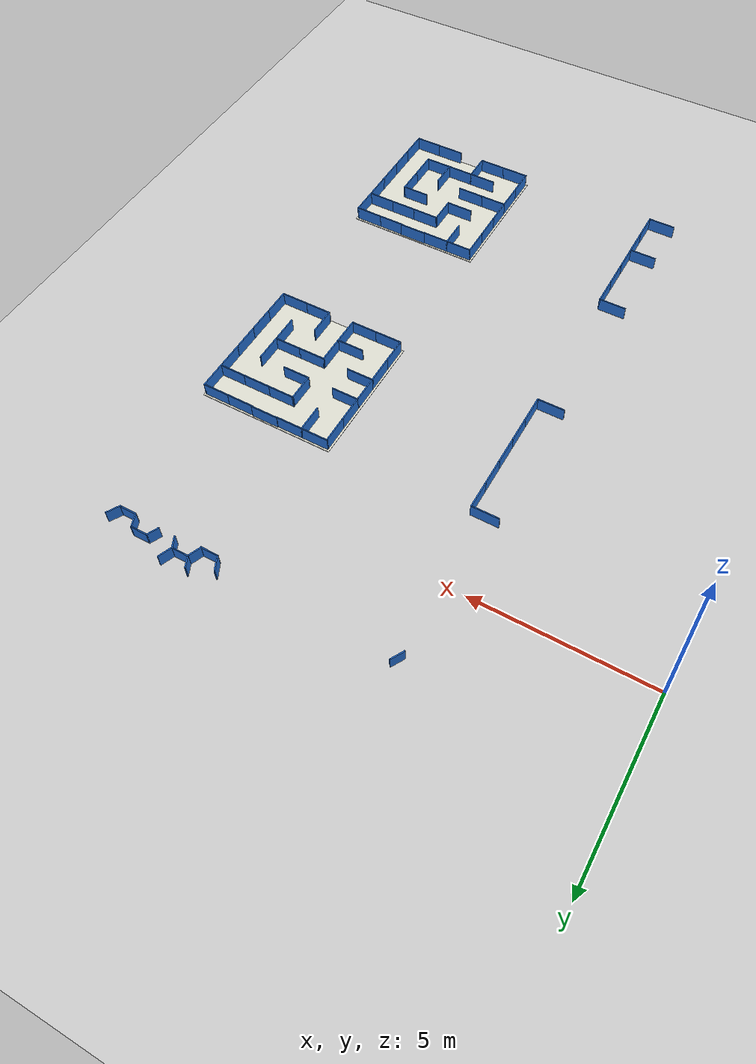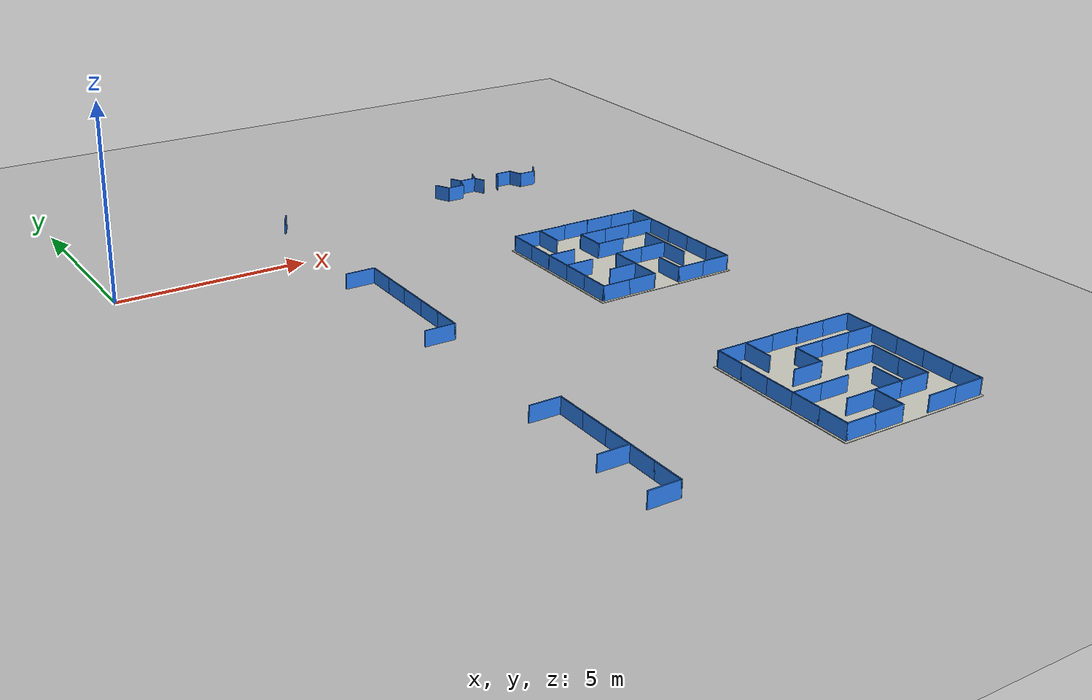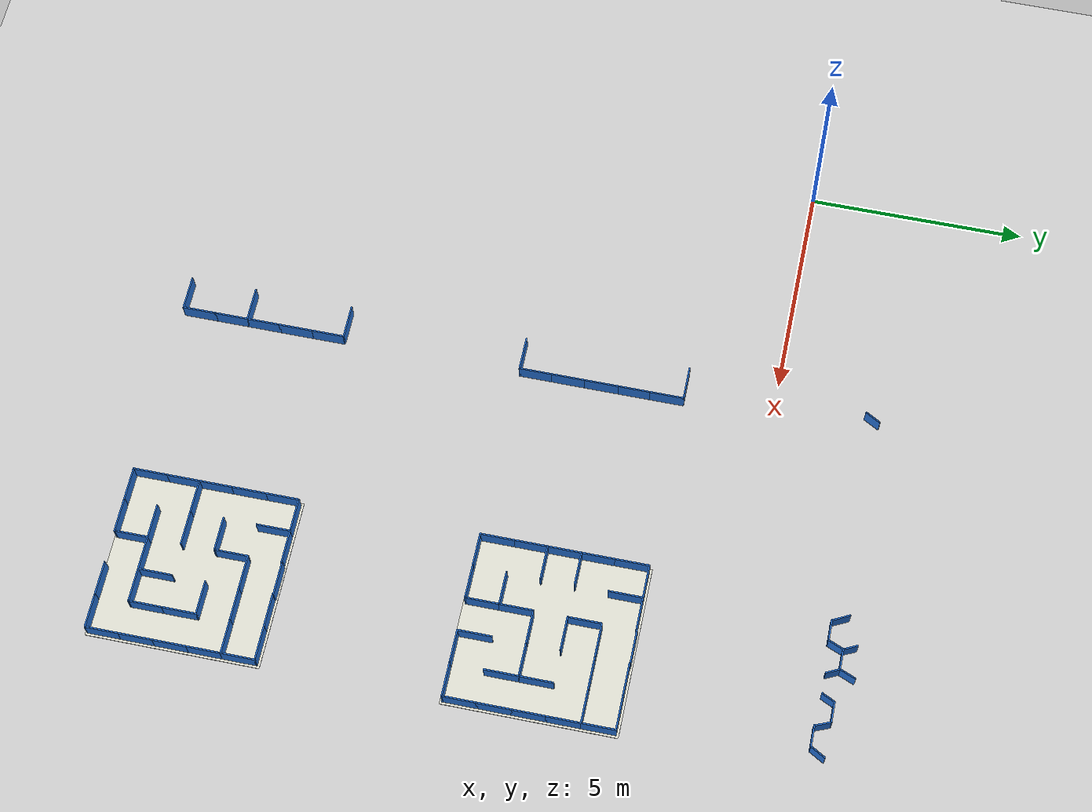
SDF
<sdf version="1.10">
 <world name="nhom8_maze_multi">
  <model name="ground_plane">
   <static>true</static>
   <link name="link">
    <collision name="collision">
     <geometry><plane><normal>0 0 1</normal><size>80.0 80.0</size></plane></geometry>
     <surface><friction><ode><mu>40</mu></ode></friction></surface>
    </collision>
    <visual name="visual">
     <geometry><plane><normal>0 0 1</normal><size>80.0 80.0</size></plane></geometry>
     <material>
      <ambient>0.8 0.8 0.8 1</ambient>
      <diffuse>0.8 0.8 0.8 1</diffuse>
      <specular>0.8 0.8 0.8 1</specular>
     </material>
    </visual>
   </link>
  </model>
  <model name="ortho_1_wall_014">
   <static>true</static>
   <pose>5.917600 -10.465950 0.2000 0 0 1.570796</pose>
   <link name="link">
    <collision name="col"><geometry><box><size>0.7971 0.0300 0.4000</size></box></geometry></collision>
    <visual name="vis">
     <geometry><box><size>0.7971 0.0300 0.4000</size></box></geometry>
     <material><ambient>0.15 0.45 0.85 1</ambient><diffuse>0.15 0.45 0.85 1</diffuse></material>
    </visual>
   </link>
  </model>
  <model name="ortho_1_wall_015">
   <static>true</static>
   <pose>5.917600 -11.233000 0.2000 0 0 1.570796</pose>
   <link name="link">
    <collision name="col"><geometry><box><size>0.7970 0.0300 0.4000</size></box></geometry></collision>
    <visual name="vis">
     <geometry><box><size>0.7970 0.0300 0.4000</size></box></geometry>
     <material><ambient>0.15 0.45 0.85 1</ambient><diffuse>0.15 0.45 0.85 1</diffuse></material>
    </visual>
   </link>
  </model>
  <model name="ortho_1_wall_016">
   <static>true</static>
   <pose>5.917600 -12.000000 0.2000 0 0 1.570796</pose>
   <link name="link">
    <collision name="col"><geometry><box><size>0.7970 0.0300 0.4000</size></box></geometry></collision>
    <visual name="vis">
     <geometry><box><size>0.7970 0.0300 0.4000</size></box></geometry>
     <material><ambient>0.15 0.45 0.85 1</ambient><diffuse>0.15 0.45 0.85 1</diffuse></material>
    </visual>
   </link>
  </model>
  <model name="ortho_1_wall_017">
   <static>true</static>
   <pose>5.917600 -12.767000 0.2000 0 0 1.570796</pose>
   <link name="link">
    <collision name="col"><geometry><box><size>0.7970 0.0300 0.4000</size></box></geometry></collision>
    <visual name="vis">
     <geometry><box><size>0.7970 0.0300 0.4000</size></box></geometry>
     <material><ambient>0.15 0.45 0.85 1</ambient><diffuse>0.15 0.45 0.85 1</diffuse></material>
    </visual>
   </link>
  </model>
  <model name="ortho_1_wall_018">
   <static>true</static>
   <pose>5.917600 -13.534050 0.2000 0 0 1.570796</pose>
   <link name="link">
    <collision name="col"><geometry><box><size>0.7971 0.0300 0.4000</size></box></geometry></collision>
    <visual name="vis">
     <geometry><box><size>0.7971 0.0300 0.4000</size></box></geometry>
     <material><ambient>0.15 0.45 0.85 1</ambient><diffuse>0.15 0.45 0.85 1</diffuse></material>
    </visual>
   </link>
  </model>
  <model name="ortho_1_wall_022">
   <static>true</static>
   <pose>5.534050 -10.082400 0.2000 0 0 0.000000</pose>
   <link name="link">
    <collision name="col"><geometry><box><size>0.7971 0.0300 0.4000</size></box></geometry></collision>
    <visual name="vis">
     <geometry><box><size>0.7971 0.0300 0.4000</size></box></geometry>
     <material><ambient>0.15 0.45 0.85 1</ambient><diffuse>0.15 0.45 0.85 1</diffuse></material>
    </visual>
   </link>
  </model>
  <model name="ortho_1_wall_027">
   <static>true</static>
   <pose>5.534050 -12.383500 0.2000 0 0 0.000000</pose>
   <link name="link">
    <collision name="col"><geometry><box><size>0.7971 0.0300 0.4000</size></box></geometry></collision>
    <visual name="vis">
     <geometry><box><size>0.7971 0.0300 0.4000</size></box></geometry>
     <material><ambient>0.15 0.45 0.85 1</ambient><diffuse>0.15 0.45 0.85 1</diffuse></material>
    </visual>
   </link>
  </model>
  <model name="ortho_1_wall_033">
   <static>true</static>
   <pose>5.534050 -13.917600 0.2000 0 0 0.000000</pose>
   <link name="link">
    <collision name="col"><geometry><box><size>0.7971 0.0300 0.4000</size></box></geometry></collision>
    <visual name="vis">
     <geometry><box><size>0.7971 0.0300 0.4000</size></box></geometry>
     <material><ambient>0.15 0.45 0.85 1</ambient><diffuse>0.15 0.45 0.85 1</diffuse></material>
    </visual>
   </link>
  </model>
  <model name="ortho_2_wall_000">
   <static>true</static>
   <pose>10.082400 -10.465950 0.2000 0 0 1.570796</pose>
   <link name="link">
    <collision name="col"><geometry><box><size>0.7971 0.0300 0.4000</size></box></geometry></collision>
    <visual name="vis">
     <geometry><box><size>0.7971 0.0300 0.4000</size></box></geometry>
     <material><ambient>0.15 0.45 0.85 1</ambient><diffuse>0.15 0.45 0.85 1</diffuse></material>
    </visual>
   </link>
  </model>
  <model name="ortho_2_wall_001">
   <static>true</static>
   <pose>10.082400 -11.233000 0.2000 0 0 1.570796</pose>
   <link name="link">
    <collision name="col"><geometry><box><size>0.7970 0.0300 0.4000</size></box></geometry></collision>
    <visual name="vis">
     <geometry><box><size>0.7970 0.0300 0.4000</size></box></geometry>
     <material><ambient>0.15 0.45 0.85 1</ambient><diffuse>0.15 0.45 0.85 1</diffuse></material>
    </visual>
   </link>
  </model>
  <model name="ortho_2_wall_002">
   <static>true</static>
   <pose>10.082400 -12.000000 0.2000 0 0 1.570796</pose>
   <link name="link">
    <collision name="col"><geometry><box><size>0.7970 0.0300 0.4000</size></box></geometry></collision>
    <visual name="vis">
     <geometry><box><size>0.7970 0.0300 0.4000</size></box></geometry>
     <material><ambient>0.15 0.45 0.85 1</ambient><diffuse>0.15 0.45 0.85 1</diffuse></material>
    </visual>
   </link>
  </model>
  <model name="ortho_2_wall_003">
   <static>true</static>
   <pose>10.082400 -12.767000 0.2000 0 0 1.570796</pose>
   <link name="link">
    <collision name="col"><geometry><box><size>0.7970 0.0300 0.4000</size></box></geometry></collision>
    <visual name="vis">
     <geometry><box><size>0.7970 0.0300 0.4000</size></box></geometry>
     <material><ambient>0.15 0.45 0.85 1</ambient><diffuse>0.15 0.45 0.85 1</diffuse></material>
    </visual>
   </link>
  </model>
  <model name="ortho_2_wall_004">
   <static>true</static>
   <pose>10.082400 -13.534050 0.2000 0 0 1.570796</pose>
   <link name="link">
    <collision name="col"><geometry><box><size>0.7971 0.0300 0.4000</size></box></geometry></collision>
    <visual name="vis">
     <geometry><box><size>0.7971 0.0300 0.4000</size></box></geometry>
     <material><ambient>0.15 0.45 0.85 1</ambient><diffuse>0.15 0.45 0.85 1</diffuse></material>
    </visual>
   </link>
  </model>
  <model name="ortho_2_wall_005">
   <static>true</static>
   <pose>10.849500 -10.465950 0.2000 0 0 1.570796</pose>
   <link name="link">
    <collision name="col"><geometry><box><size>0.7971 0.0300 0.4000</size></box></geometry></collision>
    <visual name="vis">
     <geometry><box><size>0.7971 0.0300 0.4000</size></box></geometry>
     <material><ambient>0.15 0.45 0.85 1</ambient><diffuse>0.15 0.45 0.85 1</diffuse></material>
    </visual>
   </link>
  </model>
  <model name="ortho_2_wall_006">
   <static>true</static>
   <pose>11.616500 -11.233000 0.2000 0 0 1.570796</pose>
   <link name="link">
    <collision name="col"><geometry><box><size>0.7970 0.0300 0.4000</size></box></geometry></collision>
    <visual name="vis">
     <geometry><box><size>0.7970 0.0300 0.4000</size></box></geometry>
     <material><ambient>0.15 0.45 0.85 1</ambient><diffuse>0.15 0.45 0.85 1</diffuse></material>
    </visual>
   </link>
  </model>
  <model name="ortho_2_wall_007">
   <static>true</static>
   <pose>11.616500 -13.534050 0.2000 0 0 1.570796</pose>
   <link name="link">
    <collision name="col"><geometry><box><size>0.7971 0.0300 0.4000</size></box></geometry></collision>
    <visual name="vis">
     <geometry><box><size>0.7971 0.0300 0.4000</size></box></geometry>
     <material><ambient>0.15 0.45 0.85 1</ambient><diffuse>0.15 0.45 0.85 1</diffuse></material>
    </visual>
   </link>
  </model>
  <model name="ortho_2_wall_008">
   <static>true</static>
   <pose>12.383500 -12.767000 0.2000 0 0 1.570796</pose>
   <link name="link">
    <collision name="col"><geometry><box><size>0.7970 0.0300 0.4000</size></box></geometry></collision>
    <visual name="vis">
     <geometry><box><size>0.7970 0.0300 0.4000</size></box></geometry>
     <material><ambient>0.15 0.45 0.85 1</ambient><diffuse>0.15 0.45 0.85 1</diffuse></material>
    </visual>
   </link>
  </model>
  <model name="ortho_2_wall_009">
   <static>true</static>
   <pose>13.150500 -12.000000 0.2000 0 0 1.570796</pose>
   <link name="link">
    <collision name="col"><geometry><box><size>0.7970 0.0300 0.4000</size></box></geometry></collision>
    <visual name="vis">
     <geometry><box><size>0.7970 0.0300 0.4000</size></box></geometry>
     <material><ambient>0.15 0.45 0.85 1</ambient><diffuse>0.15 0.45 0.85 1</diffuse></material>
    </visual>
   </link>
  </model>
  <model name="ortho_2_wall_010">
   <static>true</static>
   <pose>13.150500 -12.767000 0.2000 0 0 1.570796</pose>
   <link name="link">
    <collision name="col"><geometry><box><size>0.7970 0.0300 0.4000</size></box></geometry></collision>
    <visual name="vis">
     <geometry><box><size>0.7970 0.0300 0.4000</size></box></geometry>
     <material><ambient>0.15 0.45 0.85 1</ambient><diffuse>0.15 0.45 0.85 1</diffuse></material>
    </visual>
   </link>
  </model>
  <model name="ortho_2_wall_011">
   <static>true</static>
   <pose>13.917600 -10.465950 0.2000 0 0 1.570796</pose>
   <link name="link">
    <collision name="col"><geometry><box><size>0.7971 0.0300 0.4000</size></box></geometry></collision>
    <visual name="vis">
     <geometry><box><size>0.7971 0.0300 0.4000</size></box></geometry>
     <material><ambient>0.15 0.45 0.85 1</ambient><diffuse>0.15 0.45 0.85 1</diffuse></material>
    </visual>
   </link>
  </model>
  <model name="ortho_2_wall_012">
   <static>true</static>
   <pose>13.917600 -11.233000 0.2000 0 0 1.570796</pose>
   <link name="link">
    <collision name="col"><geometry><box><size>0.7970 0.0300 0.4000</size></box></geometry></collision>
    <visual name="vis">
     <geometry><box><size>0.7970 0.0300 0.4000</size></box></geometry>
     <material><ambient>0.15 0.45 0.85 1</ambient><diffuse>0.15 0.45 0.85 1</diffuse></material>
    </visual>
   </link>
  </model>
  <model name="ortho_2_wall_013">
   <static>true</static>
   <pose>13.917600 -12.000000 0.2000 0 0 1.570796</pose>
   <link name="link">
    <collision name="col"><geometry><box><size>0.7970 0.0300 0.4000</size></box></geometry></collision>
    <visual name="vis">
     <geometry><box><size>0.7970 0.0300 0.4000</size></box></geometry>
     <material><ambient>0.15 0.45 0.85 1</ambient><diffuse>0.15 0.45 0.85 1</diffuse></material>
    </visual>
   </link>
  </model>
  <model name="ortho_2_wall_014">
   <static>true</static>
   <pose>13.917600 -12.767000 0.2000 0 0 1.570796</pose>
   <link name="link">
    <collision name="col"><geometry><box><size>0.7970 0.0300 0.4000</size></box></geometry></collision>
    <visual name="vis">
     <geometry><box><size>0.7970 0.0300 0.4000</size></box></geometry>
     <material><ambient>0.15 0.45 0.85 1</ambient><diffuse>0.15 0.45 0.85 1</diffuse></material>
    </visual>
   </link>
  </model>
  <model name="ortho_2_wall_015">
   <static>true</static>
   <pose>13.917600 -13.534050 0.2000 0 0 1.570796</pose>
   <link name="link">
    <collision name="col"><geometry><box><size>0.7971 0.0300 0.4000</size></box></geometry></collision>
    <visual name="vis">
     <geometry><box><size>0.7971 0.0300 0.4000</size></box></geometry>
     <material><ambient>0.15 0.45 0.85 1</ambient><diffuse>0.15 0.45 0.85 1</diffuse></material>
    </visual>
   </link>
  </model>
  <model name="ortho_2_wall_016">
   <static>true</static>
   <pose>10.465950 -10.082400 0.2000 0 0 0.000000</pose>
   <link name="link">
    <collision name="col"><geometry><box><size>0.7971 0.0300 0.4000</size></box></geometry></collision>
    <visual name="vis">
     <geometry><box><size>0.7971 0.0300 0.4000</size></box></geometry>
     <material><ambient>0.15 0.45 0.85 1</ambient><diffuse>0.15 0.45 0.85 1</diffuse></material>
    </visual>
   </link>
  </model>
  <model name="ortho_2_wall_017">
   <static>true</static>
   <pose>11.233000 -10.082400 0.2000 0 0 0.000000</pose>
   <link name="link">
    <collision name="col"><geometry><box><size>0.7970 0.0300 0.4000</size></box></geometry></collision>
    <visual name="vis">
     <geometry><box><size>0.7970 0.0300 0.4000</size></box></geometry>
     <material><ambient>0.15 0.45 0.85 1</ambient><diffuse>0.15 0.45 0.85 1</diffuse></material>
    </visual>
   </link>
  </model>
  <model name="ortho_2_wall_018">
   <static>true</static>
   <pose>12.767000 -10.082400 0.2000 0 0 0.000000</pose>
   <link name="link">
    <collision name="col"><geometry><box><size>0.7970 0.0300 0.4000</size></box></geometry></collision>
    <visual name="vis">
     <geometry><box><size>0.7970 0.0300 0.4000</size></box></geometry>
     <material><ambient>0.15 0.45 0.85 1</ambient><diffuse>0.15 0.45 0.85 1</diffuse></material>
    </visual>
   </link>
  </model>
  <model name="ortho_2_wall_019">
   <static>true</static>
   <pose>13.534050 -10.082400 0.2000 0 0 0.000000</pose>
   <link name="link">
    <collision name="col"><geometry><box><size>0.7971 0.0300 0.4000</size></box></geometry></collision>
    <visual name="vis">
     <geometry><box><size>0.7971 0.0300 0.4000</size></box></geometry>
     <material><ambient>0.15 0.45 0.85 1</ambient><diffuse>0.15 0.45 0.85 1</diffuse></material>
    </visual>
   </link>
  </model>
  <model name="ortho_2_wall_020">
   <static>true</static>
   <pose>12.000000 -10.849500 0.2000 0 0 0.000000</pose>
   <link name="link">
    <collision name="col"><geometry><box><size>0.7970 0.0300 0.4000</size></box></geometry></collision>
    <visual name="vis">
     <geometry><box><size>0.7970 0.0300 0.4000</size></box></geometry>
     <material><ambient>0.15 0.45 0.85 1</ambient><diffuse>0.15 0.45 0.85 1</diffuse></material>
    </visual>
   </link>
  </model>
  <model name="ortho_2_wall_021">
   <static>true</static>
   <pose>12.767000 -10.849500 0.2000 0 0 0.000000</pose>
   <link name="link">
    <collision name="col"><geometry><box><size>0.7970 0.0300 0.4000</size></box></geometry></collision>
    <visual name="vis">
     <geometry><box><size>0.7970 0.0300 0.4000</size></box></geometry>
     <material><ambient>0.15 0.45 0.85 1</ambient><diffuse>0.15 0.45 0.85 1</diffuse></material>
    </visual>
   </link>
  </model>
  <model name="ortho_2_wall_022">
   <static>true</static>
   <pose>13.534050 -10.849500 0.2000 0 0 0.000000</pose>
   <link name="link">
    <collision name="col"><geometry><box><size>0.7971 0.0300 0.4000</size></box></geometry></collision>
    <visual name="vis">
     <geometry><box><size>0.7971 0.0300 0.4000</size></box></geometry>
     <material><ambient>0.15 0.45 0.85 1</ambient><diffuse>0.15 0.45 0.85 1</diffuse></material>
    </visual>
   </link>
  </model>
  <model name="ortho_2_wall_023">
   <static>true</static>
   <pose>11.233000 -11.616500 0.2000 0 0 0.000000</pose>
   <link name="link">
    <collision name="col"><geometry><box><size>0.7970 0.0300 0.4000</size></box></geometry></collision>
    <visual name="vis">
     <geometry><box><size>0.7970 0.0300 0.4000</size></box></geometry>
     <material><ambient>0.15 0.45 0.85 1</ambient><diffuse>0.15 0.45 0.85 1</diffuse></material>
    </visual>
   </link>
  </model>
  <model name="ortho_2_wall_024">
   <static>true</static>
   <pose>12.767000 -11.616500 0.2000 0 0 0.000000</pose>
   <link name="link">
    <collision name="col"><geometry><box><size>0.7970 0.0300 0.4000</size></box></geometry></collision>
    <visual name="vis">
     <geometry><box><size>0.7970 0.0300 0.4000</size></box></geometry>
     <material><ambient>0.15 0.45 0.85 1</ambient><diffuse>0.15 0.45 0.85 1</diffuse></material>
    </visual>
   </link>
  </model>
  <model name="ortho_2_wall_025">
   <static>true</static>
   <pose>10.465950 -12.383500 0.2000 0 0 0.000000</pose>
   <link name="link">
    <collision name="col"><geometry><box><size>0.7971 0.0300 0.4000</size></box></geometry></collision>
    <visual name="vis">
     <geometry><box><size>0.7971 0.0300 0.4000</size></box></geometry>
     <material><ambient>0.15 0.45 0.85 1</ambient><diffuse>0.15 0.45 0.85 1</diffuse></material>
    </visual>
   </link>
  </model>
  <model name="ortho_2_wall_026">
   <static>true</static>
   <pose>11.233000 -12.383500 0.2000 0 0 0.000000</pose>
   <link name="link">
    <collision name="col"><geometry><box><size>0.7970 0.0300 0.4000</size></box></geometry></collision>
    <visual name="vis">
     <geometry><box><size>0.7970 0.0300 0.4000</size></box></geometry>
     <material><ambient>0.15 0.45 0.85 1</ambient><diffuse>0.15 0.45 0.85 1</diffuse></material>
    </visual>
   </link>
  </model>
  <model name="ortho_2_wall_027">
   <static>true</static>
   <pose>11.233000 -13.150500 0.2000 0 0 0.000000</pose>
   <link name="link">
    <collision name="col"><geometry><box><size>0.7970 0.0300 0.4000</size></box></geometry></collision>
    <visual name="vis">
     <geometry><box><size>0.7970 0.0300 0.4000</size></box></geometry>
     <material><ambient>0.15 0.45 0.85 1</ambient><diffuse>0.15 0.45 0.85 1</diffuse></material>
    </visual>
   </link>
  </model>
  <model name="ortho_2_wall_028">
   <static>true</static>
   <pose>12.000000 -13.150500 0.2000 0 0 0.000000</pose>
   <link name="link">
    <collision name="col"><geometry><box><size>0.7970 0.0300 0.4000</size></box></geometry></collision>
    <visual name="vis">
     <geometry><box><size>0.7970 0.0300 0.4000</size></box></geometry>
     <material><ambient>0.15 0.45 0.85 1</ambient><diffuse>0.15 0.45 0.85 1</diffuse></material>
    </visual>
   </link>
  </model>
  <model name="ortho_2_wall_029">
   <static>true</static>
   <pose>12.767000 -13.150500 0.2000 0 0 0.000000</pose>
   <link name="link">
    <collision name="col"><geometry><box><size>0.7970 0.0300 0.4000</size></box></geometry></collision>
    <visual name="vis">
     <geometry><box><size>0.7970 0.0300 0.4000</size></box></geometry>
     <material><ambient>0.15 0.45 0.85 1</ambient><diffuse>0.15 0.45 0.85 1</diffuse></material>
    </visual>
   </link>
  </model>
  <model name="ortho_2_wall_030">
   <static>true</static>
   <pose>10.465950 -13.917600 0.2000 0 0 0.000000</pose>
   <link name="link">
    <collision name="col"><geometry><box><size>0.7971 0.0300 0.4000</size></box></geometry></collision>
    <visual name="vis">
     <geometry><box><size>0.7971 0.0300 0.4000</size></box></geometry>
     <material><ambient>0.15 0.45 0.85 1</ambient><diffuse>0.15 0.45 0.85 1</diffuse></material>
    </visual>
   </link>
  </model>
  <model name="ortho_2_wall_031">
   <static>true</static>
   <pose>11.233000 -13.917600 0.2000 0 0 0.000000</pose>
   <link name="link">
    <collision name="col"><geometry><box><size>0.7970 0.0300 0.4000</size></box></geometry></collision>
    <visual name="vis">
     <geometry><box><size>0.7970 0.0300 0.4000</size></box></geometry>
     <material><ambient>0.15 0.45 0.85 1</ambient><diffuse>0.15 0.45 0.85 1</diffuse></material>
    </visual>
   </link>
  </model>
  <model name="ortho_2_wall_032">
   <static>true</static>
   <pose>12.767000 -13.917600 0.2000 0 0 0.000000</pose>
   <link name="link">
    <collision name="col"><geometry><box><size>0.7970 0.0300 0.4000</size></box></geometry></collision>
    <visual name="vis">
     <geometry><box><size>0.7970 0.0300 0.4000</size></box></geometry>
     <material><ambient>0.15 0.45 0.85 1</ambient><diffuse>0.15 0.45 0.85 1</diffuse></material>
    </visual>
   </link>
  </model>
  <model name="ortho_2_wall_033">
   <static>true</static>
   <pose>13.534050 -13.917600 0.2000 0 0 0.000000</pose>
   <link name="link">
    <collision name="col"><geometry><box><size>0.7971 0.0300 0.4000</size></box></geometry></collision>
    <visual name="vis">
     <geometry><box><size>0.7971 0.0300 0.4000</size></box></geometry>
     <material><ambient>0.15 0.45 0.85 1</ambient><diffuse>0.15 0.45 0.85 1</diffuse></material>
    </visual>
   </link>
  </model>
  <model name="ortho_2_wall_034">
   <static>true</static>
   <pose>12.003400 -10.067400 0.2000 0 0 0.000000</pose>
   <link name="link">
    <collision name="col"><geometry><box><size>0.7950 0.0300 0.4000</size></box></geometry></collision>
    <visual name="vis">
     <geometry><box><size>0.7950 0.0300 0.4000</size></box></geometry>
     <material><ambient>0.15 0.45 0.85 1</ambient><diffuse>0.15 0.45 0.85 1</diffuse></material>
    </visual>
   </link>
  </model>
  <model name="ortho_2_floor">
   <static>true</static>
   <pose>12.000000 -12.000000 -0.02 0 0 0</pose>
   <link name="link">
    <collision name="col"><geometry><box><size>3.9652 3.9652 0.03</size></box></geometry></collision>
    <visual name="vis">
     <geometry><box><size>3.9652 3.9652 0.03</size></box></geometry>
     <material><ambient>0.87 0.87 0.82 1</ambient><diffuse>0.87 0.87 0.82 1</diffuse></material>
    </visual>
   </link>
  </model>
  <model name="ortho_5_wall_014">
   <static>true</static>
   <pose>5.917600 -2.465950 0.2000 0 0 1.570796</pose>
   <link name="link">
    <collision name="col"><geometry><box><size>0.7971 0.0300 0.4000</size></box></geometry></collision>
    <visual name="vis">
     <geometry><box><size>0.7971 0.0300 0.4000</size></box></geometry>
     <material><ambient>0.15 0.45 0.85 1</ambient><diffuse>0.15 0.45 0.85 1</diffuse></material>
    </visual>
   </link>
  </model>
  <model name="ortho_5_wall_015">
   <static>true</static>
   <pose>5.917600 -3.233000 0.2000 0 0 1.570796</pose>
   <link name="link">
    <collision name="col"><geometry><box><size>0.7970 0.0300 0.4000</size></box></geometry></collision>
    <visual name="vis">
     <geometry><box><size>0.7970 0.0300 0.4000</size></box></geometry>
     <material><ambient>0.15 0.45 0.85 1</ambient><diffuse>0.15 0.45 0.85 1</diffuse></material>
    </visual>
   </link>
  </model>
  <model name="ortho_5_wall_016">
   <static>true</static>
   <pose>5.917600 -4.000000 0.2000 0 0 1.570796</pose>
   <link name="link">
    <collision name="col"><geometry><box><size>0.7970 0.0300 0.4000</size></box></geometry></collision>
    <visual name="vis">
     <geometry><box><size>0.7970 0.0300 0.4000</size></box></geometry>
     <material><ambient>0.15 0.45 0.85 1</ambient><diffuse>0.15 0.45 0.85 1</diffuse></material>
    </visual>
   </link>
  </model>
  <model name="ortho_5_wall_017">
   <static>true</static>
   <pose>5.917600 -4.767000 0.2000 0 0 1.570796</pose>
   <link name="link">
    <collision name="col"><geometry><box><size>0.7970 0.0300 0.4000</size></box></geometry></collision>
    <visual name="vis">
     <geometry><box><size>0.7970 0.0300 0.4000</size></box></geometry>
     <material><ambient>0.15 0.45 0.85 1</ambient><diffuse>0.15 0.45 0.85 1</diffuse></material>
    </visual>
   </link>
  </model>
  <model name="ortho_5_wall_018">
   <static>true</static>
   <pose>5.917600 -5.534050 0.2000 0 0 1.570796</pose>
   <link name="link">
    <collision name="col"><geometry><box><size>0.7971 0.0300 0.4000</size></box></geometry></collision>
    <visual name="vis">
     <geometry><box><size>0.7971 0.0300 0.4000</size></box></geometry>
     <material><ambient>0.15 0.45 0.85 1</ambient><diffuse>0.15 0.45 0.85 1</diffuse></material>
    </visual>
   </link>
  </model>
  <model name="ortho_5_wall_022">
   <static>true</static>
   <pose>5.534050 -2.082400 0.2000 0 0 0.000000</pose>
   <link name="link">
    <collision name="col"><geometry><box><size>0.7971 0.0300 0.4000</size></box></geometry></collision>
    <visual name="vis">
     <geometry><box><size>0.7971 0.0300 0.4000</size></box></geometry>
     <material><ambient>0.15 0.45 0.85 1</ambient><diffuse>0.15 0.45 0.85 1</diffuse></material>
    </visual>
   </link>
  </model>
  <model name="ortho_5_wall_033">
   <static>true</static>
   <pose>5.534050 -5.917600 0.2000 0 0 0.000000</pose>
   <link name="link">
    <collision name="col"><geometry><box><size>0.7971 0.0300 0.4000</size></box></geometry></collision>
    <visual name="vis">
     <geometry><box><size>0.7971 0.0300 0.4000</size></box></geometry>
     <material><ambient>0.15 0.45 0.85 1</ambient><diffuse>0.15 0.45 0.85 1</diffuse></material>
    </visual>
   </link>
  </model>
  <model name="ortho_6_wall_000">
   <static>true</static>
   <pose>10.082400 -2.465950 0.2000 0 0 1.570796</pose>
   <link name="link">
    <collision name="col"><geometry><box><size>0.7971 0.0300 0.4000</size></box></geometry></collision>
    <visual name="vis">
     <geometry><box><size>0.7971 0.0300 0.4000</size></box></geometry>
     <material><ambient>0.15 0.45 0.85 1</ambient><diffuse>0.15 0.45 0.85 1</diffuse></material>
    </visual>
   </link>
  </model>
  <model name="ortho_6_wall_001">
   <static>true</static>
   <pose>10.082400 -3.233000 0.2000 0 0 1.570796</pose>
   <link name="link">
    <collision name="col"><geometry><box><size>0.7970 0.0300 0.4000</size></box></geometry></collision>
    <visual name="vis">
     <geometry><box><size>0.7970 0.0300 0.4000</size></box></geometry>
     <material><ambient>0.15 0.45 0.85 1</ambient><diffuse>0.15 0.45 0.85 1</diffuse></material>
    </visual>
   </link>
  </model>
  <model name="ortho_6_wall_002">
   <static>true</static>
   <pose>10.082400 -4.000000 0.2000 0 0 1.570796</pose>
   <link name="link">
    <collision name="col"><geometry><box><size>0.7970 0.0300 0.4000</size></box></geometry></collision>
    <visual name="vis">
     <geometry><box><size>0.7970 0.0300 0.4000</size></box></geometry>
     <material><ambient>0.15 0.45 0.85 1</ambient><diffuse>0.15 0.45 0.85 1</diffuse></material>
    </visual>
   </link>
  </model>
  <model name="ortho_6_wall_003">
   <static>true</static>
   <pose>10.082400 -4.767000 0.2000 0 0 1.570796</pose>
   <link name="link">
    <collision name="col"><geometry><box><size>0.7970 0.0300 0.4000</size></box></geometry></collision>
    <visual name="vis">
     <geometry><box><size>0.7970 0.0300 0.4000</size></box></geometry>
     <material><ambient>0.15 0.45 0.85 1</ambient><diffuse>0.15 0.45 0.85 1</diffuse></material>
    </visual>
   </link>
  </model>
  <model name="ortho_6_wall_004">
   <static>true</static>
   <pose>10.082400 -5.534050 0.2000 0 0 1.570796</pose>
   <link name="link">
    <collision name="col"><geometry><box><size>0.7971 0.0300 0.4000</size></box></geometry></collision>
    <visual name="vis">
     <geometry><box><size>0.7971 0.0300 0.4000</size></box></geometry>
     <material><ambient>0.15 0.45 0.85 1</ambient><diffuse>0.15 0.45 0.85 1</diffuse></material>
    </visual>
   </link>
  </model>
  <model name="ortho_6_wall_005">
   <static>true</static>
   <pose>10.849500 -2.465950 0.2000 0 0 1.570796</pose>
   <link name="link">
    <collision name="col"><geometry><box><size>0.7971 0.0300 0.4000</size></box></geometry></collision>
    <visual name="vis">
     <geometry><box><size>0.7971 0.0300 0.4000</size></box></geometry>
     <material><ambient>0.15 0.45 0.85 1</ambient><diffuse>0.15 0.45 0.85 1</diffuse></material>
    </visual>
   </link>
  </model>
  <model name="ortho_6_wall_006">
   <static>true</static>
   <pose>11.616500 -3.233000 0.2000 0 0 1.570796</pose>
   <link name="link">
    <collision name="col"><geometry><box><size>0.7970 0.0300 0.4000</size></box></geometry></collision>
    <visual name="vis">
     <geometry><box><size>0.7970 0.0300 0.4000</size></box></geometry>
     <material><ambient>0.15 0.45 0.85 1</ambient><diffuse>0.15 0.45 0.85 1</diffuse></material>
    </visual>
   </link>
  </model>
  <model name="ortho_6_wall_007">
   <static>true</static>
   <pose>11.616500 -4.767000 0.2000 0 0 1.570796</pose>
   <link name="link">
    <collision name="col"><geometry><box><size>0.7970 0.0300 0.4000</size></box></geometry></collision>
    <visual name="vis">
     <geometry><box><size>0.7970 0.0300 0.4000</size></box></geometry>
     <material><ambient>0.15 0.45 0.85 1</ambient><diffuse>0.15 0.45 0.85 1</diffuse></material>
    </visual>
   </link>
  </model>
  <model name="ortho_6_wall_008">
   <static>true</static>
   <pose>11.616500 -5.534050 0.2000 0 0 1.570796</pose>
   <link name="link">
    <collision name="col"><geometry><box><size>0.7971 0.0300 0.4000</size></box></geometry></collision>
    <visual name="vis">
     <geometry><box><size>0.7971 0.0300 0.4000</size></box></geometry>
     <material><ambient>0.15 0.45 0.85 1</ambient><diffuse>0.15 0.45 0.85 1</diffuse></material>
    </visual>
   </link>
  </model>
  <model name="ortho_6_wall_009">
   <static>true</static>
   <pose>12.383500 -5.534050 0.2000 0 0 1.570796</pose>
   <link name="link">
    <collision name="col"><geometry><box><size>0.7971 0.0300 0.4000</size></box></geometry></collision>
    <visual name="vis">
     <geometry><box><size>0.7971 0.0300 0.4000</size></box></geometry>
     <material><ambient>0.15 0.45 0.85 1</ambient><diffuse>0.15 0.45 0.85 1</diffuse></material>
    </visual>
   </link>
  </model>
  <model name="ortho_6_wall_010">
   <static>true</static>
   <pose>13.150500 -4.000000 0.2000 0 0 1.570796</pose>
   <link name="link">
    <collision name="col"><geometry><box><size>0.7970 0.0300 0.4000</size></box></geometry></collision>
    <visual name="vis">
     <geometry><box><size>0.7970 0.0300 0.4000</size></box></geometry>
     <material><ambient>0.15 0.45 0.85 1</ambient><diffuse>0.15 0.45 0.85 1</diffuse></material>
    </visual>
   </link>
  </model>
  <model name="ortho_6_wall_011">
   <static>true</static>
   <pose>13.150500 -4.767000 0.2000 0 0 1.570796</pose>
   <link name="link">
    <collision name="col"><geometry><box><size>0.7970 0.0300 0.4000</size></box></geometry></collision>
    <visual name="vis">
     <geometry><box><size>0.7970 0.0300 0.4000</size></box></geometry>
     <material><ambient>0.15 0.45 0.85 1</ambient><diffuse>0.15 0.45 0.85 1</diffuse></material>
    </visual>
   </link>
  </model>
  <model name="ortho_6_wall_012">
   <static>true</static>
   <pose>13.917600 -2.465950 0.2000 0 0 1.570796</pose>
   <link name="link">
    <collision name="col"><geometry><box><size>0.7971 0.0300 0.4000</size></box></geometry></collision>
    <visual name="vis">
     <geometry><box><size>0.7971 0.0300 0.4000</size></box></geometry>
     <material><ambient>0.15 0.45 0.85 1</ambient><diffuse>0.15 0.45 0.85 1</diffuse></material>
    </visual>
   </link>
  </model>
  <model name="ortho_6_wall_013">
   <static>true</static>
   <pose>13.917600 -3.233000 0.2000 0 0 1.570796</pose>
   <link name="link">
    <collision name="col"><geometry><box><size>0.7970 0.0300 0.4000</size></box></geometry></collision>
    <visual name="vis">
     <geometry><box><size>0.7970 0.0300 0.4000</size></box></geometry>
     <material><ambient>0.15 0.45 0.85 1</ambient><diffuse>0.15 0.45 0.85 1</diffuse></material>
    </visual>
   </link>
  </model>
  <model name="ortho_6_wall_014">
   <static>true</static>
   <pose>13.917600 -4.000000 0.2000 0 0 1.570796</pose>
   <link name="link">
    <collision name="col"><geometry><box><size>0.7970 0.0300 0.4000</size></box></geometry></collision>
    <visual name="vis">
     <geometry><box><size>0.7970 0.0300 0.4000</size></box></geometry>
     <material><ambient>0.15 0.45 0.85 1</ambient><diffuse>0.15 0.45 0.85 1</diffuse></material>
    </visual>
   </link>
  </model>
  <model name="ortho_6_wall_015">
   <static>true</static>
   <pose>13.917600 -4.767000 0.2000 0 0 1.570796</pose>
   <link name="link">
    <collision name="col"><geometry><box><size>0.7970 0.0300 0.4000</size></box></geometry></collision>
    <visual name="vis">
     <geometry><box><size>0.7970 0.0300 0.4000</size></box></geometry>
     <material><ambient>0.15 0.45 0.85 1</ambient><diffuse>0.15 0.45 0.85 1</diffuse></material>
    </visual>
   </link>
  </model>
  <model name="ortho_6_wall_016">
   <static>true</static>
   <pose>13.917600 -5.534050 0.2000 0 0 1.570796</pose>
   <link name="link">
    <collision name="col"><geometry><box><size>0.7971 0.0300 0.4000</size></box></geometry></collision>
    <visual name="vis">
     <geometry><box><size>0.7971 0.0300 0.4000</size></box></geometry>
     <material><ambient>0.15 0.45 0.85 1</ambient><diffuse>0.15 0.45 0.85 1</diffuse></material>
    </visual>
   </link>
  </model>
  <model name="ortho_6_wall_017">
   <static>true</static>
   <pose>10.465950 -2.082400 0.2000 0 0 0.000000</pose>
   <link name="link">
    <collision name="col"><geometry><box><size>0.7971 0.0300 0.4000</size></box></geometry></collision>
    <visual name="vis">
     <geometry><box><size>0.7971 0.0300 0.4000</size></box></geometry>
     <material><ambient>0.15 0.45 0.85 1</ambient><diffuse>0.15 0.45 0.85 1</diffuse></material>
    </visual>
   </link>
  </model>
  <model name="ortho_6_wall_018">
   <static>true</static>
   <pose>11.233000 -2.082400 0.2000 0 0 0.000000</pose>
   <link name="link">
    <collision name="col"><geometry><box><size>0.7970 0.0300 0.4000</size></box></geometry></collision>
    <visual name="vis">
     <geometry><box><size>0.7970 0.0300 0.4000</size></box></geometry>
     <material><ambient>0.15 0.45 0.85 1</ambient><diffuse>0.15 0.45 0.85 1</diffuse></material>
    </visual>
   </link>
  </model>
  <model name="ortho_6_wall_019">
   <static>true</static>
   <pose>12.767000 -2.082400 0.2000 0 0 0.000000</pose>
   <link name="link">
    <collision name="col"><geometry><box><size>0.7970 0.0300 0.4000</size></box></geometry></collision>
    <visual name="vis">
     <geometry><box><size>0.7970 0.0300 0.4000</size></box></geometry>
     <material><ambient>0.15 0.45 0.85 1</ambient><diffuse>0.15 0.45 0.85 1</diffuse></material>
    </visual>
   </link>
  </model>
  <model name="ortho_6_wall_020">
   <static>true</static>
   <pose>13.534050 -2.082400 0.2000 0 0 0.000000</pose>
   <link name="link">
    <collision name="col"><geometry><box><size>0.7971 0.0300 0.4000</size></box></geometry></collision>
    <visual name="vis">
     <geometry><box><size>0.7971 0.0300 0.4000</size></box></geometry>
     <material><ambient>0.15 0.45 0.85 1</ambient><diffuse>0.15 0.45 0.85 1</diffuse></material>
    </visual>
   </link>
  </model>
  <model name="ortho_6_wall_021">
   <static>true</static>
   <pose>12.000000 -2.849500 0.2000 0 0 0.000000</pose>
   <link name="link">
    <collision name="col"><geometry><box><size>0.7970 0.0300 0.4000</size></box></geometry></collision>
    <visual name="vis">
     <geometry><box><size>0.7970 0.0300 0.4000</size></box></geometry>
     <material><ambient>0.15 0.45 0.85 1</ambient><diffuse>0.15 0.45 0.85 1</diffuse></material>
    </visual>
   </link>
  </model>
  <model name="ortho_6_wall_022">
   <static>true</static>
   <pose>12.767000 -2.849500 0.2000 0 0 0.000000</pose>
   <link name="link">
    <collision name="col"><geometry><box><size>0.7970 0.0300 0.4000</size></box></geometry></collision>
    <visual name="vis">
     <geometry><box><size>0.7970 0.0300 0.4000</size></box></geometry>
     <material><ambient>0.15 0.45 0.85 1</ambient><diffuse>0.15 0.45 0.85 1</diffuse></material>
    </visual>
   </link>
  </model>
  <model name="ortho_6_wall_023">
   <static>true</static>
   <pose>13.534050 -2.849500 0.2000 0 0 0.000000</pose>
   <link name="link">
    <collision name="col"><geometry><box><size>0.7971 0.0300 0.4000</size></box></geometry></collision>
    <visual name="vis">
     <geometry><box><size>0.7971 0.0300 0.4000</size></box></geometry>
     <material><ambient>0.15 0.45 0.85 1</ambient><diffuse>0.15 0.45 0.85 1</diffuse></material>
    </visual>
   </link>
  </model>
  <model name="ortho_6_wall_024">
   <static>true</static>
   <pose>10.465950 -3.616500 0.2000 0 0 0.000000</pose>
   <link name="link">
    <collision name="col"><geometry><box><size>0.7971 0.0300 0.4000</size></box></geometry></collision>
    <visual name="vis">
     <geometry><box><size>0.7971 0.0300 0.4000</size></box></geometry>
     <material><ambient>0.15 0.45 0.85 1</ambient><diffuse>0.15 0.45 0.85 1</diffuse></material>
    </visual>
   </link>
  </model>
  <model name="ortho_6_wall_025">
   <static>true</static>
   <pose>12.000000 -3.616500 0.2000 0 0 0.000000</pose>
   <link name="link">
    <collision name="col"><geometry><box><size>0.7970 0.0300 0.4000</size></box></geometry></collision>
    <visual name="vis">
     <geometry><box><size>0.7970 0.0300 0.4000</size></box></geometry>
     <material><ambient>0.15 0.45 0.85 1</ambient><diffuse>0.15 0.45 0.85 1</diffuse></material>
    </visual>
   </link>
  </model>
  <model name="ortho_6_wall_026">
   <static>true</static>
   <pose>10.465950 -4.383500 0.2000 0 0 0.000000</pose>
   <link name="link">
    <collision name="col"><geometry><box><size>0.7971 0.0300 0.4000</size></box></geometry></collision>
    <visual name="vis">
     <geometry><box><size>0.7971 0.0300 0.4000</size></box></geometry>
     <material><ambient>0.15 0.45 0.85 1</ambient><diffuse>0.15 0.45 0.85 1</diffuse></material>
    </visual>
   </link>
  </model>
  <model name="ortho_6_wall_027">
   <static>true</static>
   <pose>12.000000 -4.383500 0.2000 0 0 0.000000</pose>
   <link name="link">
    <collision name="col"><geometry><box><size>0.7970 0.0300 0.4000</size></box></geometry></collision>
    <visual name="vis">
     <geometry><box><size>0.7970 0.0300 0.4000</size></box></geometry>
     <material><ambient>0.15 0.45 0.85 1</ambient><diffuse>0.15 0.45 0.85 1</diffuse></material>
    </visual>
   </link>
  </model>
  <model name="ortho_6_wall_028">
   <static>true</static>
   <pose>12.767000 -4.383500 0.2000 0 0 0.000000</pose>
   <link name="link">
    <collision name="col"><geometry><box><size>0.7970 0.0300 0.4000</size></box></geometry></collision>
    <visual name="vis">
     <geometry><box><size>0.7970 0.0300 0.4000</size></box></geometry>
     <material><ambient>0.15 0.45 0.85 1</ambient><diffuse>0.15 0.45 0.85 1</diffuse></material>
    </visual>
   </link>
  </model>
  <model name="ortho_6_wall_029">
   <static>true</static>
   <pose>11.233000 -5.150500 0.2000 0 0 0.000000</pose>
   <link name="link">
    <collision name="col"><geometry><box><size>0.7970 0.0300 0.4000</size></box></geometry></collision>
    <visual name="vis">
     <geometry><box><size>0.7970 0.0300 0.4000</size></box></geometry>
     <material><ambient>0.15 0.45 0.85 1</ambient><diffuse>0.15 0.45 0.85 1</diffuse></material>
    </visual>
   </link>
  </model>
  <model name="ortho_6_wall_030">
   <static>true</static>
   <pose>10.465950 -5.917600 0.2000 0 0 0.000000</pose>
   <link name="link">
    <collision name="col"><geometry><box><size>0.7971 0.0300 0.4000</size></box></geometry></collision>
    <visual name="vis">
     <geometry><box><size>0.7971 0.0300 0.4000</size></box></geometry>
     <material><ambient>0.15 0.45 0.85 1</ambient><diffuse>0.15 0.45 0.85 1</diffuse></material>
    </visual>
   </link>
  </model>
  <model name="ortho_6_wall_031">
   <static>true</static>
   <pose>11.233000 -5.917600 0.2000 0 0 0.000000</pose>
   <link name="link">
    <collision name="col"><geometry><box><size>0.7970 0.0300 0.4000</size></box></geometry></collision>
    <visual name="vis">
     <geometry><box><size>0.7970 0.0300 0.4000</size></box></geometry>
     <material><ambient>0.15 0.45 0.85 1</ambient><diffuse>0.15 0.45 0.85 1</diffuse></material>
    </visual>
   </link>
  </model>
  <model name="ortho_6_wall_032">
   <static>true</static>
   <pose>12.767000 -5.917600 0.2000 0 0 0.000000</pose>
   <link name="link">
    <collision name="col"><geometry><box><size>0.7970 0.0300 0.4000</size></box></geometry></collision>
    <visual name="vis">
     <geometry><box><size>0.7970 0.0300 0.4000</size></box></geometry>
     <material><ambient>0.15 0.45 0.85 1</ambient><diffuse>0.15 0.45 0.85 1</diffuse></material>
    </visual>
   </link>
  </model>
  <model name="ortho_6_wall_033">
   <static>true</static>
   <pose>13.534050 -5.917600 0.2000 0 0 0.000000</pose>
   <link name="link">
    <collision name="col"><geometry><box><size>0.7971 0.0300 0.4000</size></box></geometry></collision>
    <visual name="vis">
     <geometry><box><size>0.7971 0.0300 0.4000</size></box></geometry>
     <material><ambient>0.15 0.45 0.85 1</ambient><diffuse>0.15 0.45 0.85 1</diffuse></material>
    </visual>
   </link>
  </model>
  <model name="ortho_6_wall_034">
   <static>true</static>
   <pose>12.003400 -2.067400 0.2000 0 0 0.000000</pose>
   <link name="link">
    <collision name="col"><geometry><box><size>0.7950 0.0300 0.4000</size></box></geometry></collision>
    <visual name="vis">
     <geometry><box><size>0.7950 0.0300 0.4000</size></box></geometry>
     <material><ambient>0.15 0.45 0.85 1</ambient><diffuse>0.15 0.45 0.85 1</diffuse></material>
    </visual>
   </link>
  </model>
  <model name="ortho_6_floor">
   <static>true</static>
   <pose>12.000000 -4.000000 -0.02 0 0 0</pose>
   <link name="link">
    <collision name="col"><geometry><box><size>3.9652 3.9652 0.03</size></box></geometry></collision>
    <visual name="vis">
     <geometry><box><size>3.9652 3.9652 0.03</size></box></geometry>
     <material><ambient>0.87 0.87 0.82 1</ambient><diffuse>0.87 0.87 0.82 1</diffuse></material>
    </visual>
   </link>
  </model>
  <model name="sigma_3_wall_043">
   <static>true</static>
   <pose>5.544900 2.235850 0.2000 0 0 1.051589</pose>
   <link name="link">
    <collision name="col"><geometry><box><size>0.4035 0.0300 0.4000</size></box></geometry></collision>
    <visual name="vis">
     <geometry><box><size>0.4035 0.0300 0.4000</size></box></geometry>
     <material><ambient>0.15 0.45 0.85 1</ambient><diffuse>0.15 0.45 0.85 1</diffuse></material>
    </visual>
   </link>
  </model>
  <model name="sigma_4_wall_014">
   <static>true</static>
   <pose>11.392200 2.419200 0.2000 0 0 0.000000</pose>
   <link name="link">
    <collision name="col"><geometry><box><size>0.4934 0.0300 0.4000</size></box></geometry></collision>
    <visual name="vis">
     <geometry><box><size>0.4934 0.0300 0.4000</size></box></geometry>
     <material><ambient>0.15 0.45 0.85 1</ambient><diffuse>0.15 0.45 0.85 1</diffuse></material>
    </visual>
   </link>
  </model>
  <model name="sigma_4_wall_015">
   <static>true</static>
   <pose>12.609950 2.419200 0.2000 0 0 0.000000</pose>
   <link name="link">
    <collision name="col"><geometry><box><size>0.4961 0.0300 0.4000</size></box></geometry></collision>
    <visual name="vis">
     <geometry><box><size>0.4961 0.0300 0.4000</size></box></geometry>
     <material><ambient>0.15 0.45 0.85 1</ambient><diffuse>0.15 0.45 0.85 1</diffuse></material>
    </visual>
   </link>
  </model>
  <model name="sigma_4_wall_016">
   <static>true</static>
   <pose>10.782650 2.073700 0.2000 0 0 0.000000</pose>
   <link name="link">
    <collision name="col"><geometry><box><size>0.4993 0.0300 0.4000</size></box></geometry></collision>
    <visual name="vis">
     <geometry><box><size>0.4993 0.0300 0.4000</size></box></geometry>
     <material><ambient>0.15 0.45 0.85 1</ambient><diffuse>0.15 0.45 0.85 1</diffuse></material>
    </visual>
   </link>
  </model>
  <model name="sigma_4_wall_017">
   <static>true</static>
   <pose>13.217550 2.073700 0.2000 0 0 0.000000</pose>
   <link name="link">
    <collision name="col"><geometry><box><size>0.4995 0.0300 0.4000</size></box></geometry></collision>
    <visual name="vis">
     <geometry><box><size>0.4995 0.0300 0.4000</size></box></geometry>
     <material><ambient>0.15 0.45 0.85 1</ambient><diffuse>0.15 0.45 0.85 1</diffuse></material>
    </visual>
   </link>
  </model>
  <model name="sigma_4_wall_032">
   <static>true</static>
   <pose>12.912850 2.246450 0.2000 0 0 -1.186186</pose>
   <link name="link">
    <collision name="col"><geometry><box><size>0.4027 0.0300 0.4000</size></box></geometry></collision>
    <visual name="vis">
     <geometry><box><size>0.4027 0.0300 0.4000</size></box></geometry>
     <material><ambient>0.15 0.45 0.85 1</ambient><diffuse>0.15 0.45 0.85 1</diffuse></material>
    </visual>
   </link>
  </model>
  <model name="sigma_4_wall_038">
   <static>true</static>
   <pose>11.692650 2.275850 0.2000 0 0 -1.123473</pose>
   <link name="link">
    <collision name="col"><geometry><box><size>0.3479 0.0300 0.4000</size></box></geometry></collision>
    <visual name="vis">
     <geometry><box><size>0.3479 0.0300 0.4000</size></box></geometry>
     <material><ambient>0.15 0.45 0.85 1</ambient><diffuse>0.15 0.45 0.85 1</diffuse></material>
    </visual>
   </link>
  </model>
  <model name="sigma_4_wall_040">
   <static>true</static>
   <pose>11.091400 2.564600 0.2000 0 0 -1.127476</pose>
   <link name="link">
    <collision name="col"><geometry><box><size>0.3520 0.0300 0.4000</size></box></geometry></collision>
    <visual name="vis">
     <geometry><box><size>0.3520 0.0300 0.4000</size></box></geometry>
     <material><ambient>0.15 0.45 0.85 1</ambient><diffuse>0.15 0.45 0.85 1</diffuse></material>
    </visual>
   </link>
  </model>
  <model name="sigma_4_wall_042">
   <static>true</static>
   <pose>10.455950 2.260150 0.2000 0 0 -1.112266</pose>
   <link name="link">
    <collision name="col"><geometry><box><size>0.4457 0.0300 0.4000</size></box></geometry></collision>
    <visual name="vis">
     <geometry><box><size>0.4457 0.0300 0.4000</size></box></geometry>
     <material><ambient>0.15 0.45 0.85 1</ambient><diffuse>0.15 0.45 0.85 1</diffuse></material>
    </visual>
   </link>
  </model>
  <model name="sigma_4_wall_043">
   <static>true</static>
   <pose>13.544900 2.235850 0.2000 0 0 1.051589</pose>
   <link name="link">
    <collision name="col"><geometry><box><size>0.4035 0.0300 0.4000</size></box></geometry></collision>
    <visual name="vis">
     <geometry><box><size>0.4035 0.0300 0.4000</size></box></geometry>
     <material><ambient>0.15 0.45 0.85 1</ambient><diffuse>0.15 0.45 0.85 1</diffuse></material>
    </visual>
   </link>
  </model>
  <model name="sigma_4_wall_047">
   <static>true</static>
   <pose>12.308200 2.275600 0.2000 0 0 1.124353</pose>
   <link name="link">
    <collision name="col"><geometry><box><size>0.3483 0.0300 0.4000</size></box></geometry></collision>
    <visual name="vis">
     <geometry><box><size>0.3483 0.0300 0.4000</size></box></geometry>
     <material><ambient>0.15 0.45 0.85 1</ambient><diffuse>0.15 0.45 0.85 1</diffuse></material>
    </visual>
   </link>
  </model>
  <model name="sigma_4_wall_052">
   <static>true</static>
   <pose>11.696550 2.596900 0.2000 0 0 1.182620</pose>
   <link name="link">
    <collision name="col"><geometry><box><size>0.4140 0.0300 0.4000</size></box></geometry></collision>
    <visual name="vis">
     <geometry><box><size>0.4140 0.0300 0.4000</size></box></geometry>
     <material><ambient>0.15 0.45 0.85 1</ambient><diffuse>0.15 0.45 0.85 1</diffuse></material>
    </visual>
   </link>
  </model>
  <model name="sigma_4_wall_054">
   <static>true</static>
   <pose>11.088850 2.246500 0.2000 0 0 1.177833</pose>
   <link name="link">
    <collision name="col"><geometry><box><size>0.4040 0.0300 0.4000</size></box></geometry></collision>
    <visual name="vis">
     <geometry><box><size>0.4040 0.0300 0.4000</size></box></geometry>
     <material><ambient>0.15 0.45 0.85 1</ambient><diffuse>0.15 0.45 0.85 1</diffuse></material>
    </visual>
   </link>
  </model>
 </world>
</sdf>
